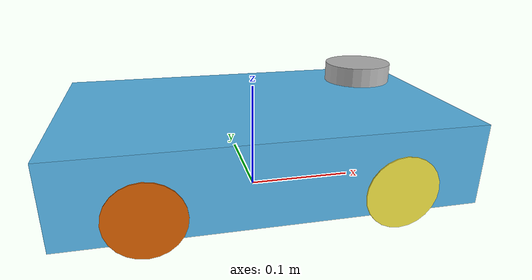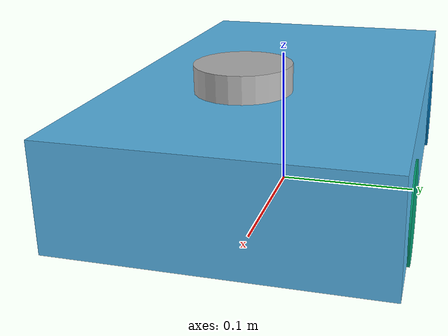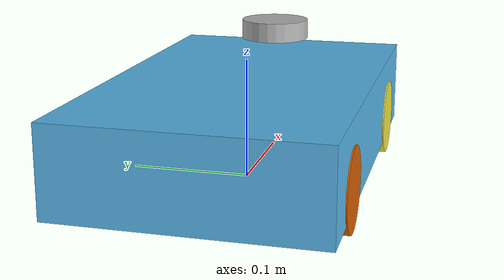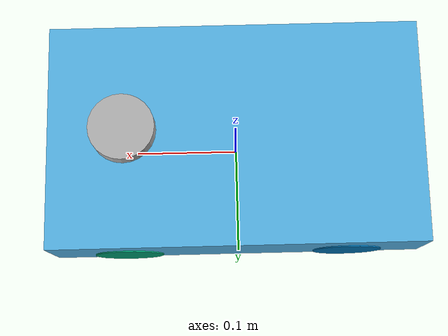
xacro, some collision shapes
<?xml version='1.0'?>

<robot name="aibot" xmlns:xacro="http://ros.org/wiki/xacro">

  <link name='base_link' />

  <link name='base_footprint'>

    <visual name='base_footprint_visual'>
      <origin xyz="0 0 0" rpy="0 0 -1.57"/>
      <geometry>
        <mesh filename="package://aibot_description/meshes/s1/car_body.stl" scale="0.001 0.001 0.001"/>
      </geometry>
    </visual>

    <collision name='collision_body'>
    <origin xyz="0 0 0.0365" rpy="0 0 0"/>
      <geometry>
        <box size="0.35 0.21 0.072"/>
      </geometry>
    </collision>

  </link>

  <joint name="base_footprint_joint" type="fixed" >
    <origin xyz="0 0 0.0135" rpy="0 0 0"/>
    <child link="base_footprint"/>
    <parent link="base_link"/>
  </joint>

  <link name="front_left_wheel">

    <visual name="front_left_wheel_visual">
      <origin xyz="0 0 0" rpy="0 1.5707 1.5707"/>
      <geometry>
        <cylinder radius="0.0325" length="0.024"/>
      </geometry>
    </visual>

    <collision name="collision_front_left_wheel">
      <origin xyz="0 0 0" rpy="0 1.5707 1.5707"/>
      <geometry>
        <cylinder radius="0.0325" length="0.024"/>
      </geometry>
    </collision>

  </link>

  <link name="front_right_wheel">

    <visual name="front_right_wheel_visual">
      <origin xyz="0 0 0.0" rpy="0 1.5707 1.5707"/>
      <geometry>
        <cylinder radius="0.0325" length="0.024"/>
      </geometry>
    </visual>

    <collision name="collision_front_right_wheel">
      <origin xyz="0 0 0" rpy="0 1.5707 1.5707"/>
      <geometry>
        <cylinder radius="0.0325" length="0.024"/>
      </geometry>
    </collision>

  </link>

  <joint name="front_left_wheel_hinge" type="fixed">
    <origin xyz="0.104 0.0941 0.0185" rpy="0 0 0"/>
    <child link="front_left_wheel"/>
    <parent link="base_footprint"/>
    <axis xyz="0 1 0" rpy="0 0 0"/>
    <limit effort="10000" velocity="1000"/>
    <joint_properties damping="1.0" friction="1.0"/>
  </joint>

  <joint name="front_right_wheel_hinge" type="fixed">
    <origin xyz="0.104 -0.0941 0.0185" rpy="0 0 0"/>
    <child link="front_right_wheel"/>
    <parent link="base_footprint"/>
    <axis xyz="0 1 0" rpy="0 0 0"/>
    <limit effort="10000" velocity="1000"/>
    <joint_properties damping="1.0" friction="1.0"/>
  </joint>

  <link name="rear_left_wheel">

    <visual name="rear_left_wheel_visual">
      <origin xyz="0 0 0" rpy="0 1.5707 1.5707"/>
      <geometry>
        <cylinder radius="0.0325" length="0.024"/>
      </geometry>
    </visual>

    <collision name="collision_rear_left_wheel">
      <origin xyz="0 0 0" rpy="0 1.5707 1.5707"/>
      <geometry>
        <cylinder radius="0.0325" length="0.024"/>
      </geometry>
    </collision>

  </link>

  <link name="rear_right_wheel">

    <visual name="rear_right_wheel_visual">
      <origin xyz="0 0 0" rpy="0 1.5707 1.5707"/>
      <geometry>
        <cylinder radius="0.0325" length="0.024"/>
      </geometry>
    </visual>

    <collision name="collision_rear_right_wheel">
      <origin xyz="0 0 0" rpy="0 1.5707 1.5707"/>
      <geometry>
        <cylinder radius="0.0325" length="0.024"/>
      </geometry>
    </collision>

  </link>

  <joint name="rear_left_wheel_hinge" type="fixed">
    <origin xyz="-0.104 0.0941 0.0185" rpy="0 0 0"/>
    <child link="rear_left_wheel"/>
    <parent link="base_footprint"/>
    <axis xyz="0 1 0" rpy="0 0 0"/>
    <limit effort="10000" velocity="1000"/>
    <joint_properties damping="1.0" friction="1.0"/>
  </joint>

  <joint name="rear_right_wheel_hinge" type="fixed">
    <origin xyz="-0.104 -0.0941 0.0185" rpy="0 0 0"/>
    <child link="rear_right_wheel"/>
    <parent link="base_footprint"/>
    <axis xyz="0 1 0" rpy="0 0 0"/>
    <limit effort="10000" velocity="1000"/>
    <joint_properties damping="1.0" friction="1.0"/>
  </joint>

  <link name="camera">

    <visual name="camera_visual">
      <origin xyz="0 0 0" rpy="0 0 0"/>
      <geometry>
        <cylinder radius="0.005" length="0.005"/>
      </geometry>
      <material name="black"/>
    </visual>

    <collision name="collision_camera">
      <origin xyz="0 0 0" rpy="0 0 0"/>
      <geometry>
        <cylinder radius="0.005" length="0.005"/>
      </geometry>
    </collision>

  </link>

  <joint name="camera_joint" type="fixed">
    <origin xyz=".1608 0 0.0557" rpy="1.57 0 1.57"/>
    <parent link="base_footprint"/>
    <child link="camera"/>
  </joint>

  <link name="laser">

    <visual name='base_footprint_visual'>
      <origin xyz="0 0 0" rpy="0 -1.57 0"/>
      <geometry>
        <mesh filename="package://aibot_description/meshes/s1/ydlidar.stl" scale="0.001 0.001 0.001"/>
      </geometry>
    </visual>

    <collision name="collision_laser">
      <origin xyz="0 0 0" rpy="0 0 0"/>
      <geometry>
        <cylinder radius="0.03" length="0.017"/>
      </geometry>
    </collision>

  </link>

  <joint name="laser_joint" type="fixed">
    <axis xyz="0 1 0" />
    <origin xyz="0.1025 0 0.096" rpy="0 0 3.14"/>
    <parent link="base_footprint"/>
    <child link="laser"/>
  </joint>

  <link name="imu_link">

    <visual name="imu_visual">
      <origin xyz="0 0 0" rpy="0 0 0"/>
      <geometry>
        <cylinder radius="0.001" length="0.001"/>
      </geometry>
      <material name="black"/>
    </visual>

  </link>

  <joint name="imu_joint" type="fixed">
    <origin xyz="-0.0235 -0.0146 0.012" rpy="0 0 0"/>
    <parent link="base_footprint"/>
    <child link="imu_link"/>
  </joint>

</robot>
